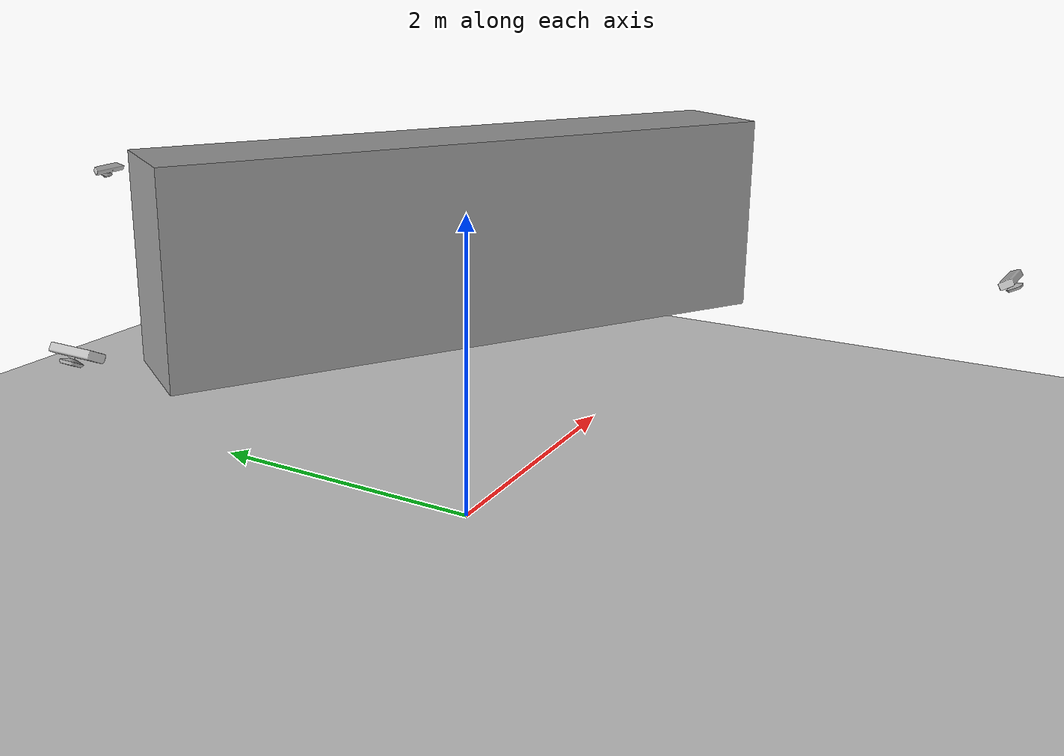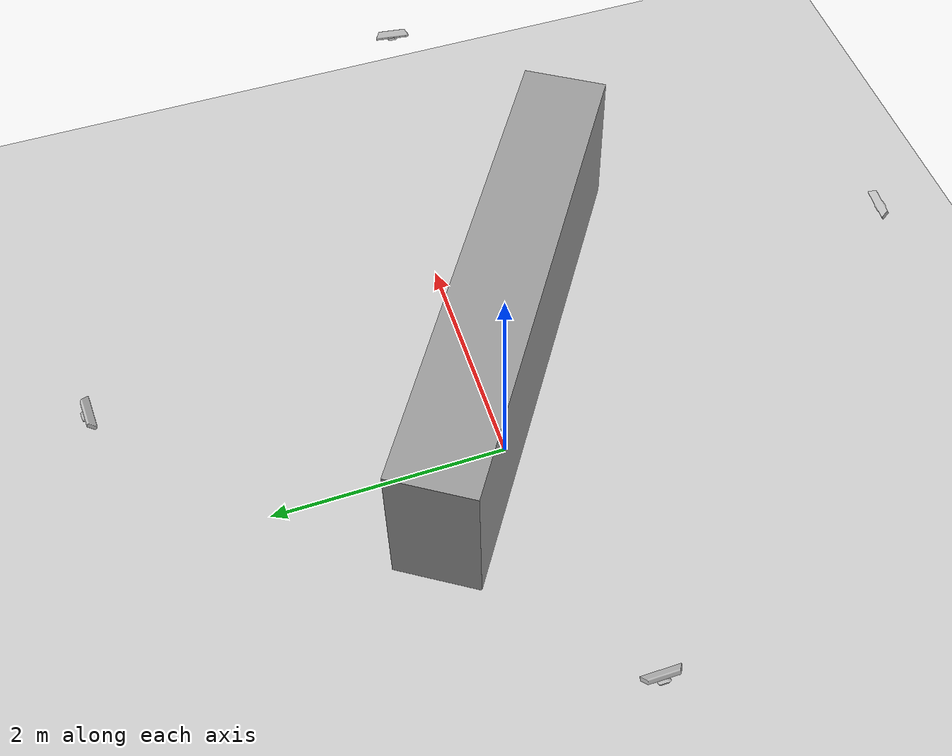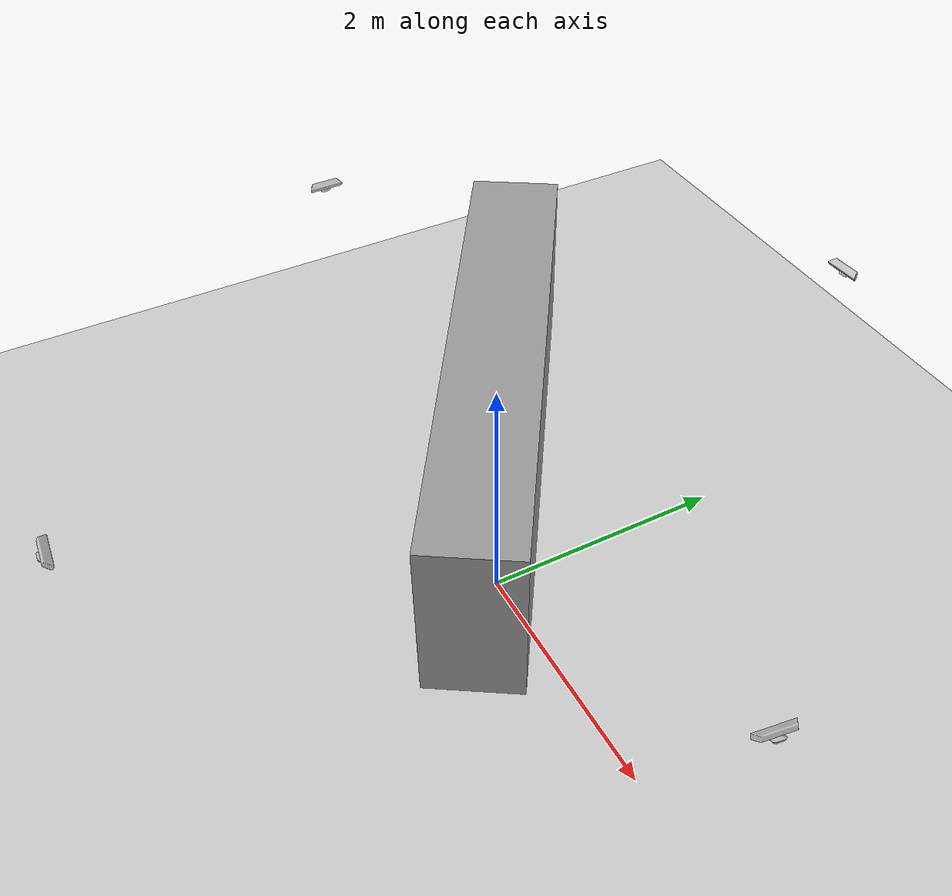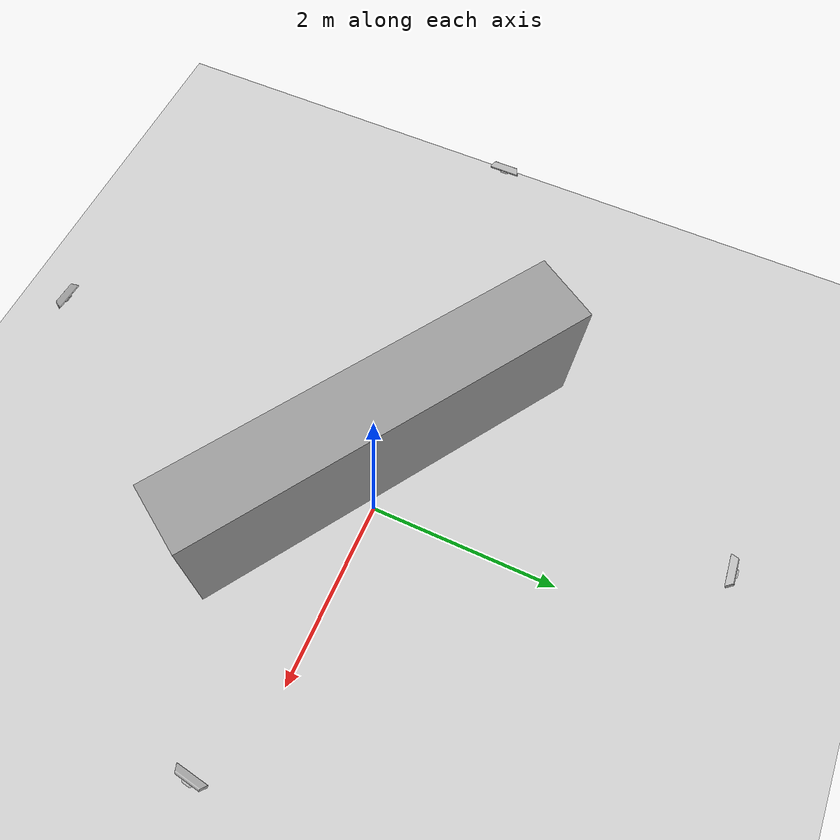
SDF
<sdf version="1.7">
 <world name="default">
  <light name="sun" type="directional">
   <pose>0 0 10 0 -0 0</pose>
   <diffuse>0.8 0.8 0.8 1</diffuse>
   <specular>0.2 0.2 0.2 1</specular>
   <attenuation>
    <range>1000</range>
    <constant>0.9</constant>
    <linear>0.01</linear>
    <quadratic>0.001</quadratic>
   </attenuation>
   <direction>-0.5 0.1 -0.9</direction>
   <spot><inner_angle>0</inner_angle><outer_angle>0</outer_angle><falloff>0</falloff></spot>
  </light>
  <model name="ground_plane">
   <static>1</static>
   <link name="link">
    <collision name="collision">
     <geometry><plane><normal>0 0 1</normal><size>100 100</size></plane></geometry>
     <surface>
      <contact><collide_bitmask>65535</collide_bitmask></contact>
      <friction><ode><mu>100</mu><mu2>50</mu2></ode></friction>
     </surface>
    </collision>
    <visual name="visual">
     <cast_shadows>0</cast_shadows>
     <geometry><plane><normal>0 0 1</normal><size>100 100</size></plane></geometry>
     <material>
      <script><uri>file://media/materials/scripts/gazebo.material</uri><name>Gazebo/Grey</name></script>
     </material>
    </visual>
   </link>
  </model>
  <gravity>0 0 -9.8</gravity>
  <magnetic_field>6e-06 2.3e-05 -4.2e-05</magnetic_field>
  <atmosphere type="adiabatic"/>
  <physics type="ode">
   <max_step_size>0.001</max_step_size>
   <real_time_factor>1</real_time_factor>
   <real_time_update_rate>1000</real_time_update_rate>
  </physics>
  <scene><ambient>0.4 0.4 0.4 1</ambient><background>0.7 0.7 0.7 1</background><shadows>1</shadows></scene>
  <spherical_coordinates>
   <surface_model>EARTH_WGS84</surface_model>
   <latitude_deg>0</latitude_deg>
   <longitude_deg>0</longitude_deg>
   <elevation>0</elevation>
   <heading_deg>0</heading_deg>
  </spherical_coordinates>
  <model name="kinect1">
   <static>1</static>
   <pose>0 -3 2 -0 0.5 1.5</pose>
   <link name="link">
    <inertial>
     <mass>0.1</mass>
     <inertia><ixx>1</ixx><ixy>0</ixy><ixz>0</ixz><iyy>1</iyy><iyz>0</iyz><izz>1</izz></inertia>
    </inertial>
    <collision name="collision"><geometry><box><size>0.073 0.276 0.072</size></box></geometry></collision>
    <visual name="visual"><geometry><mesh><uri>model://kinect/meshes/kinect.dae</uri></mesh></geometry></visual>
    <sensor name="camera" type="depth">
     <update_rate>20</update_rate>
     <camera>
      <horizontal_fov>1.0472</horizontal_fov>
      <image><width>640</width><height>480</height><format>R8G8B8</format></image>
      <clip><near>0.05</near><far>10</far></clip>
     </camera>
     <plugin name="camera_plugin" filename="libgazebo_ros_openni_kinect.so">
      <baseline>0.2</baseline>
      <alwaysOn>1</alwaysOn>
      <updateRate>0.0</updateRate>
      <cameraName>camera1</cameraName>
      <imageTopicName>/camera1/color/image_raw</imageTopicName>
      <cameraInfoTopicName>/camera1/color/camera_info</cameraInfoTopicName>
      <depthImageTopicName>/camera1/depth/image_raw</depthImageTopicName>
      <depthImageCameraInfoTopicName>/camera1/depth/camera_info</depthImageCameraInfoTopicName>
      <pointCloudTopicName>/camera1/depth/points</pointCloudTopicName>
      <frameName>camera_link</frameName>
      <pointCloudCutoff>0.5</pointCloudCutoff>
      <pointCloudCutoffMax>30.0</pointCloudCutoffMax>
      <distortionK1>0</distortionK1>
      <distortionK2>0</distortionK2>
      <distortionK3>0</distortionK3>
      <distortionT1>0</distortionT1>
      <distortionT2>0</distortionT2>
      <CxPrime>0</CxPrime>
      <Cx>0</Cx>
      <Cy>0</Cy>
      <focalLength>0</focalLength>
      <hackBaseline>0</hackBaseline>
     </plugin>
    </sensor>
   </link>
  </model>
  <model name="kinect2">
   <static>1</static>
   <pose>0 3 2 0 0.5 -1.5</pose>
   <link name="link">
    <inertial>
     <mass>0.1</mass>
     <inertia><ixx>1</ixx><ixy>0</ixy><ixz>0</ixz><iyy>1</iyy><iyz>0</iyz><izz>1</izz></inertia>
    </inertial>
    <collision name="collision"><geometry><box><size>0.073 0.276 0.072</size></box></geometry></collision>
    <visual name="visual"><geometry><mesh><uri>model://kinect/meshes/kinect.dae</uri></mesh></geometry></visual>
    <sensor name="camera" type="depth">
     <update_rate>20</update_rate>
     <camera>
      <horizontal_fov>1.0472</horizontal_fov>
      <image><width>1280</width><height>720</height><format>R8G8B8</format></image>
      <clip><near>0.05</near><far>10</far></clip>
     </camera>
     <plugin name="camera_plugin" filename="libgazebo_ros_openni_kinect.so">
      <baseline>0.2</baseline>
      <alwaysOn>1</alwaysOn>
      <updateRate>0.0</updateRate>
      <cameraName>camera2</cameraName>
      <imageTopicName>/camera2/color/image_raw</imageTopicName>
      <cameraInfoTopicName>/camera2/color/camera_info</cameraInfoTopicName>
      <depthImageTopicName>/camera2/depth/image_raw</depthImageTopicName>
      <depthImageCameraInfoTopicName>/camera2/depth/camera_info</depthImageCameraInfoTopicName>
      <pointCloudTopicName>/camera2/depth/points</pointCloudTopicName>
      <frameName>camera_link</frameName>
      <pointCloudCutoff>0.5</pointCloudCutoff>
      <pointCloudCutoffMax>30.0</pointCloudCutoffMax>
      <distortionK1>0</distortionK1>
      <distortionK2>0</distortionK2>
      <distortionK3>0</distortionK3>
      <distortionT1>0</distortionT1>
      <distortionT2>0</distortionT2>
      <CxPrime>0</CxPrime>
      <Cx>0</Cx>
      <Cy>0</Cy>
      <focalLength>0</focalLength>
      <hackBaseline>0</hackBaseline>
     </plugin>
    </sensor>
   </link>
  </model>
  <model name="kinect3">
   <static>1</static>
   <pose>3 0 2 0 0.5 3</pose>
   <link name="link">
    <inertial>
     <mass>0.1</mass>
     <inertia><ixx>1</ixx><ixy>0</ixy><ixz>0</ixz><iyy>1</iyy><iyz>0</iyz><izz>1</izz></inertia>
    </inertial>
    <collision name="collision"><geometry><box><size>0.073 0.276 0.072</size></box></geometry></collision>
    <visual name="visual"><geometry><mesh><uri>model://kinect/meshes/kinect.dae</uri></mesh></geometry></visual>
    <sensor name="camera" type="depth">
     <update_rate>20</update_rate>
     <camera>
      <horizontal_fov>1.0472</horizontal_fov>
      <image><width>1280</width><height>720</height><format>R8G8B8</format></image>
      <clip><near>0.05</near><far>10</far></clip>
     </camera>
     <plugin name="camera_plugin" filename="libgazebo_ros_openni_kinect.so">
      <baseline>0.2</baseline>
      <alwaysOn>1</alwaysOn>
      <updateRate>0.0</updateRate>
      <cameraName>camera3</cameraName>
      <imageTopicName>/camera3/color/image_raw</imageTopicName>
      <cameraInfoTopicName>/camera3/color/camera_info</cameraInfoTopicName>
      <depthImageTopicName>/camera3/depth/image_raw</depthImageTopicName>
      <depthImageCameraInfoTopicName>/camera3/depth/camera_info</depthImageCameraInfoTopicName>
      <pointCloudTopicName>/camera3/depth/points</pointCloudTopicName>
      <frameName>camera_link</frameName>
      <pointCloudCutoff>0.5</pointCloudCutoff>
      <pointCloudCutoffMax>30.0</pointCloudCutoffMax>
      <distortionK1>0</distortionK1>
      <distortionK2>0</distortionK2>
      <distortionK3>0</distortionK3>
      <distortionT1>0</distortionT1>
      <distortionT2>0</distortionT2>
      <CxPrime>0</CxPrime>
      <Cx>0</Cx>
      <Cy>0</Cy>
      <focalLength>0</focalLength>
      <hackBaseline>0</hackBaseline>
     </plugin>
    </sensor>
   </link>
  </model>
  <model name="kinect4">
   <static>1</static>
   <pose>-3 0 2 0 0.5 0</pose>
   <link name="link">
    <inertial>
     <mass>0.1</mass>
     <inertia><ixx>1</ixx><ixy>0</ixy><ixz>0</ixz><iyy>1</iyy><iyz>0</iyz><izz>1</izz></inertia>
    </inertial>
    <collision name="collision"><geometry><box><size>0.073 0.276 0.072</size></box></geometry></collision>
    <visual name="visual"><geometry><mesh><uri>model://kinect/meshes/kinect.dae</uri></mesh></geometry></visual>
    <sensor name="camera" type="depth">
     <update_rate>20</update_rate>
     <camera>
      <horizontal_fov>1.0472</horizontal_fov>
      <image><width>1280</width><height>720</height><format>R8G8B8</format></image>
      <clip><near>0.05</near><far>10</far></clip>
     </camera>
     <plugin name="camera_plugin" filename="libgazebo_ros_openni_kinect.so">
      <baseline>0.2</baseline>
      <alwaysOn>1</alwaysOn>
      <updateRate>0.0</updateRate>
      <cameraName>camera4</cameraName>
      <imageTopicName>/camera4/color/image_raw</imageTopicName>
      <cameraInfoTopicName>/camera4/color/camera_info</cameraInfoTopicName>
      <depthImageTopicName>/camera4/depth/image_raw</depthImageTopicName>
      <depthImageCameraInfoTopicName>/camera4/depth/camera_info</depthImageCameraInfoTopicName>
      <pointCloudTopicName>/camera4/depth/points</pointCloudTopicName>
      <frameName>camera_link</frameName>
      <pointCloudCutoff>0.5</pointCloudCutoff>
      <pointCloudCutoffMax>30.0</pointCloudCutoffMax>
      <distortionK1>0</distortionK1>
      <distortionK2>0</distortionK2>
      <distortionK3>0</distortionK3>
      <distortionT1>0</distortionT1>
      <distortionT2>0</distortionT2>
      <CxPrime>0</CxPrime>
      <Cx>0</Cx>
      <Cy>0</Cy>
      <focalLength>0</focalLength>
      <hackBaseline>0</hackBaseline>
     </plugin>
    </sensor>
   </link>
  </model>
  <model name="wall">
   <link name="link">
    <inertial>
     <mass>9.47318</mass>
     <inertia><ixx>12.6965</ixx><ixy>0</ixy><ixz>0</ixz><iyy>1.4951</iyy><iyz>0</iyz><izz>11.8565</izz></inertia>
    </inertial>
    <pose>0 0 0 0 -0 0.998798</pose>
    <visual name="visual">
     <geometry><box><size>0.644108 3.82153 1.21615</size></box></geometry>
     <material>
      <script><name>Gazebo/Grey</name><uri>file://media/materials/scripts/gazebo.material</uri></script>
      <shader type="pixel"/>
     </material>
    </visual>
    <collision name="collision">
     <geometry><box><size>0.644108 3.82153 1.21615</size></box></geometry>
     <surface>
      <friction>
       <ode><mu>1</mu><mu2>1</mu2><fdir1>0 0 0</fdir1><slip1>0</slip1><slip2>0</slip2></ode>
       <torsional>
        <coefficient>1</coefficient>
        <patch_radius>0</patch_radius>
        <surface_radius>0</surface_radius>
        <use_patch_radius>1</use_patch_radius>
        <ode><slip>0</slip></ode>
       </torsional>
      </friction>
      <bounce><restitution_coefficient>1</restitution_coefficient><threshold>0</threshold></bounce>
      <contact>
       <collide_without_contact>0</collide_without_contact>
       <collide_without_contact_bitmask>1</collide_without_contact_bitmask>
       <collide_bitmask>1</collide_bitmask>
       <ode>
        <soft_cfm>0</soft_cfm>
        <soft_erp>0.2</soft_erp>
        <kp>1e+13</kp>
        <kd>1</kd>
        <max_vel>0.01</max_vel>
        <min_depth>0</min_depth>
       </ode>
       <bullet>
        <split_impulse>1</split_impulse>
        <split_impulse_penetration_threshold>-0.01</split_impulse_penetration_threshold>
        <soft_cfm>0</soft_cfm>
        <soft_erp>0.2</soft_erp>
        <kp>1e+13</kp>
        <kd>1</kd>
       </bullet>
      </contact>
     </surface>
    </collision>
   </link>
   <static>0</static>
   <pose>0 0 1.88 0 -0 0</pose>
  </model>
 </world>
</sdf>
